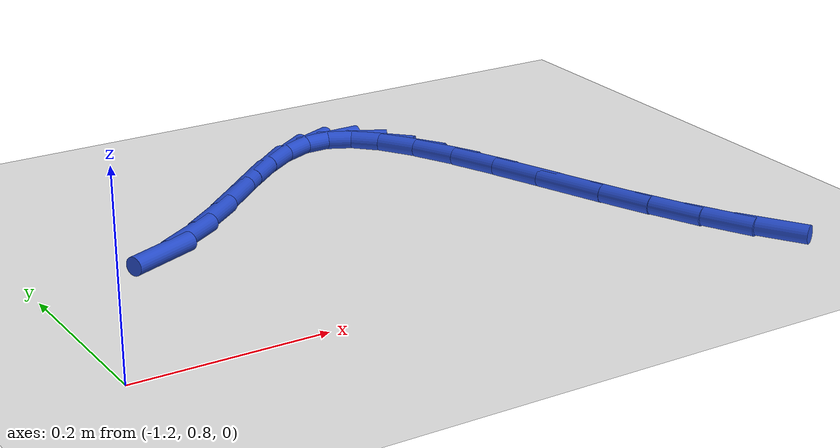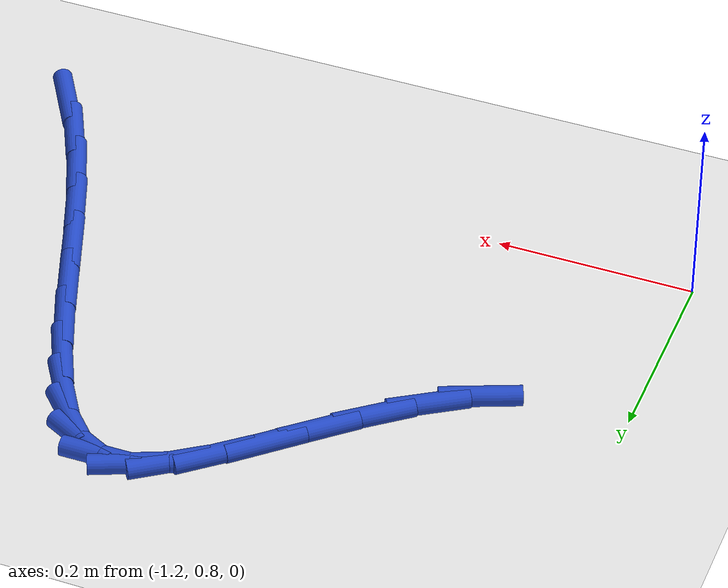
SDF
<sdf version="1.6">
 <world name="default">
  <model name="ground_plane">
   <static>1</static>
   <link name="link">
    <collision name="collision">
     <geometry><plane><normal>0 0 1</normal><size>100 100</size></plane></geometry>
     <surface><friction><ode><mu>100</mu><mu2>50</mu2></ode></friction></surface>
    </collision>
    <visual name="visual">
     <cast_shadows>0</cast_shadows>
     <geometry><plane><normal>0 0 1</normal><size>100 100</size></plane></geometry>
     <material>
      <script><uri>file://media/materials/scripts/gazebo.material</uri><name>Gazebo/WhiteGlow</name></script>
     </material>
    </visual>
   </link>
  </model>
  <model name="line">
   <link name="link_21">
    <pose>-0.5103392988594349 0.7576022798942916 0.01 0 1.57 -1.0139870729164804</pose>
    <collision name="collision">
     <geometry><cylinder><radius>0.01</radius><length>0.08</length></cylinder></geometry>
    </collision>
    <visual name="visual">
     <material>
      <script><name>Gazebo/Blue</name><uri>file://media/materials/scripts/gazebo.material</uri></script>
     </material>
     <geometry><cylinder><radius>0.01</radius><length>0.08</length></cylinder></geometry>
    </visual>
   </link>
   <link name="link_22">
    <pose>-0.539343731567225 0.8041947375228021 0.01 0 1.57 -1.1013001537380398</pose>
    <collision name="collision">
     <geometry><cylinder><radius>0.01</radius><length>0.08</length></cylinder></geometry>
    </collision>
    <visual name="visual">
     <material>
      <script><name>Gazebo/Blue</name><uri>file://media/materials/scripts/gazebo.material</uri></script>
     </material>
     <geometry><cylinder><radius>0.01</radius><length>0.08</length></cylinder></geometry>
    </visual>
   </link>
   <link name="link_23">
    <pose>-0.5653114168546742 0.8553795110157212 0.01 0 1.57 -1.1602114194753708</pose>
    <collision name="collision">
     <geometry><cylinder><radius>0.01</radius><length>0.08</length></cylinder></geometry>
    </collision>
    <visual name="visual">
     <material>
      <script><name>Gazebo/Blue</name><uri>file://media/materials/scripts/gazebo.material</uri></script>
     </material>
     <geometry><cylinder><radius>0.01</radius><length>0.08</length></cylinder></geometry>
    </visual>
   </link>
   <link name="link_24">
    <pose>-0.5888342883350056 0.9094144855301137 0.01 0 1.57 -1.195839198289286</pose>
    <collision name="collision">
     <geometry><cylinder><radius>0.01</radius><length>0.08</length></cylinder></geometry>
    </collision>
    <visual name="visual">
     <material>
      <script><name>Gazebo/Blue</name><uri>file://media/materials/scripts/gazebo.material</uri></script>
     </material>
     <geometry><cylinder><radius>0.01</radius><length>0.08</length></cylinder></geometry>
    </visual>
   </link>
   <link name="link_25">
    <pose>-0.6105224309104185 0.9645196850758107 0.01 0 1.57 -1.2109751312229877</pose>
    <collision name="collision">
     <geometry><cylinder><radius>0.01</radius><length>0.08</length></cylinder></geometry>
    </collision>
    <visual name="visual">
     <material>
      <script><name>Gazebo/Blue</name><uri>file://media/materials/scripts/gazebo.material</uri></script>
     </material>
     <geometry><cylinder><radius>0.01</radius><length>0.08</length></cylinder></geometry>
    </visual>
   </link>
   <link name="link_26">
    <pose>-0.6309859294831125 1.0189151336626436 0.01 0 1.57 -1.2055506020407951</pose>
    <collision name="collision">
     <geometry><cylinder><radius>0.01</radius><length>0.08</length></cylinder></geometry>
    </collision>
    <visual name="visual">
     <material>
      <script><name>Gazebo/Blue</name><uri>file://media/materials/scripts/gazebo.material</uri></script>
     </material>
     <geometry><cylinder><radius>0.01</radius><length>0.08</length></cylinder></geometry>
    </visual>
   </link>
   <link name="link_27">
    <pose>-0.6508348689552872 1.0708208553004435 0.01 0 1.57 -1.176074536887426</pose>
    <collision name="collision">
     <geometry><cylinder><radius>0.01</radius><length>0.08</length></cylinder></geometry>
    </collision>
    <visual name="visual">
     <material>
      <script><name>Gazebo/Blue</name><uri>file://media/materials/scripts/gazebo.material</uri></script>
     </material>
     <geometry><cylinder><radius>0.01</radius><length>0.08</length></cylinder></geometry>
    </visual>
   </link>
   <link name="link_28">
    <pose>-0.6706793342291418 1.1184568739990417 0.01 0 1.57 -1.1137706009961483</pose>
    <collision name="collision">
     <geometry><cylinder><radius>0.01</radius><length>0.08</length></cylinder></geometry>
    </collision>
    <visual name="visual">
     <material>
      <script><name>Gazebo/Blue</name><uri>file://media/materials/scripts/gazebo.material</uri></script>
     </material>
     <geometry><cylinder><radius>0.01</radius><length>0.08</length></cylinder></geometry>
    </visual>
   </link>
   <link name="link_29">
    <pose>-0.6911294102068758 1.1600432137682695 0.01 0 1.57 -1.0001918787041724</pose>
    <collision name="collision">
     <geometry><cylinder><radius>0.01</radius><length>0.08</length></cylinder></geometry>
    </collision>
    <visual name="visual">
     <material>
      <script><name>Gazebo/Blue</name><uri>file://media/materials/scripts/gazebo.material</uri></script>
     </material>
     <geometry><cylinder><radius>0.01</radius><length>0.08</length></cylinder></geometry>
    </visual>
   </link>
   <link name="link_30">
    <pose>-0.7127951817906886 1.193799898617958 0.01 0 1.57 -0.7991571823419268</pose>
    <collision name="collision">
     <geometry><cylinder><radius>0.01</radius><length>0.08</length></cylinder></geometry>
    </collision>
    <visual name="visual">
     <material>
      <script><name>Gazebo/Blue</name><uri>file://media/materials/scripts/gazebo.material</uri></script>
     </material>
     <geometry><cylinder><radius>0.01</radius><length>0.08</length></cylinder></geometry>
    </visual>
   </link>
   <link name="link_31">
    <pose>-0.7362867338827799 1.2179469525579385 0.01 0 1.57 -0.45726309812766225</pose>
    <collision name="collision">
     <geometry><cylinder><radius>0.01</radius><length>0.08</length></cylinder></geometry>
    </collision>
    <visual name="visual">
     <material>
      <script><name>Gazebo/Blue</name><uri>file://media/materials/scripts/gazebo.material</uri></script>
     </material>
     <geometry><cylinder><radius>0.01</radius><length>0.08</length></cylinder></geometry>
    </visual>
   </link>
   <link name="link_32">
    <pose>-0.762214151385349 1.230704399598042 0.01 0 1.57 0.014078933994974795</pose>
    <collision name="collision">
     <geometry><cylinder><radius>0.01</radius><length>0.08</length></cylinder></geometry>
    </collision>
    <visual name="visual">
     <material>
      <script><name>Gazebo/Blue</name><uri>file://media/materials/scripts/gazebo.material</uri></script>
     </material>
     <geometry><cylinder><radius>0.01</radius><length>0.08</length></cylinder></geometry>
    </visual>
   </link>
   <link name="link_33">
    <pose>-0.7911866044481 1.2302964713906583 0.01 0 1.57 0.4083285465042687</pose>
    <collision name="collision">
     <geometry><cylinder><radius>0.01</radius><length>0.08</length></cylinder></geometry>
    </collision>
    <visual name="visual">
     <material>
      <script><name>Gazebo/Blue</name><uri>file://media/materials/scripts/gazebo.material</uri></script>
     </material>
     <geometry><cylinder><radius>0.01</radius><length>0.08</length></cylinder></geometry>
    </visual>
   </link>
   <link name="link_34">
    <pose>-0.8235173039392557 1.2163087414537976 0.01 0 1.57 0.6102575339565286</pose>
    <collision name="collision">
     <geometry><cylinder><radius>0.01</radius><length>0.08</length></cylinder></geometry>
    </collision>
    <visual name="visual">
     <material>
      <script><name>Gazebo/Blue</name><uri>file://media/materials/scripts/gazebo.material</uri></script>
     </material>
     <geometry><cylinder><radius>0.01</radius><length>0.08</length></cylinder></geometry>
    </visual>
   </link>
   <link name="link_35">
    <pose>-0.8588001687927599 1.191635354061667 0.01 0 1.57 0.7030829358890883</pose>
    <collision name="collision">
     <geometry><cylinder><radius>0.01</radius><length>0.08</length></cylinder></geometry>
    </collision>
    <visual name="visual">
     <material>
      <script><name>Gazebo/Blue</name><uri>file://media/materials/scripts/gazebo.material</uri></script>
     </material>
     <geometry><cylinder><radius>0.01</radius><length>0.08</length></cylinder></geometry>
    </visual>
   </link>
   <link name="link_36">
    <pose>-0.8965219449302791 1.159663423696227 0.01 0 1.57 0.7356043911405161</pose>
    <collision name="collision">
     <geometry><cylinder><radius>0.01</radius><length>0.08</length></cylinder></geometry>
    </collision>
    <visual name="visual">
     <material>
      <script><name>Gazebo/Blue</name><uri>file://media/materials/scripts/gazebo.material</uri></script>
     </material>
     <geometry><cylinder><radius>0.01</radius><length>0.08</length></cylinder></geometry>
    </visual>
   </link>
   <link name="link_37">
    <pose>-0.9361693782734793 1.1237800648394376 0.01 0 1.57 0.7254171050998904</pose>
    <collision name="collision">
     <geometry><cylinder><radius>0.01</radius><length>0.08</length></cylinder></geometry>
    </collision>
    <visual name="visual">
     <material>
      <script><name>Gazebo/Blue</name><uri>file://media/materials/scripts/gazebo.material</uri></script>
     </material>
     <geometry><cylinder><radius>0.01</radius><length>0.08</length></cylinder></geometry>
    </visual>
   </link>
   <link name="link_38">
    <pose>-0.9772292147440271 1.087372391973259 0.01 0 1.57 0.674416557325362</pose>
    <collision name="collision">
     <geometry><cylinder><radius>0.01</radius><length>0.08</length></cylinder></geometry>
    </collision>
    <visual name="visual">
     <material>
      <script><name>Gazebo/Blue</name><uri>file://media/materials/scripts/gazebo.material</uri></script>
     </material>
     <geometry><cylinder><radius>0.01</radius><length>0.08</length></cylinder></geometry>
    </visual>
   </link>
   <link name="link_39">
    <pose>-1.0191882002635881 1.0538275195796518 0.01 0 1.57 0.5725604972261261</pose>
    <collision name="collision">
     <geometry><cylinder><radius>0.01</radius><length>0.08</length></cylinder></geometry>
    </collision>
    <visual name="visual">
     <material>
      <script><name>Gazebo/Blue</name><uri>file://media/materials/scripts/gazebo.material</uri></script>
     </material>
     <geometry><cylinder><radius>0.01</radius><length>0.08</length></cylinder></geometry>
    </visual>
   </link>
   <link name="link_40">
    <pose>-1.0615330807538288 1.026532562140576 0.01 0 1.57 0.3961485390348455</pose>
    <collision name="collision">
     <geometry><cylinder><radius>0.01</radius><length>0.08</length></cylinder></geometry>
    </collision>
    <visual name="visual">
     <material>
      <script><name>Gazebo/Blue</name><uri>file://media/materials/scripts/gazebo.material</uri></script>
     </material>
     <geometry><cylinder><radius>0.01</radius><length>0.08</length></cylinder></geometry>
    </visual>
   </link>
  </model>
 </world>
</sdf>
